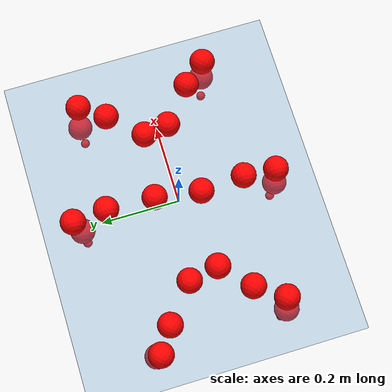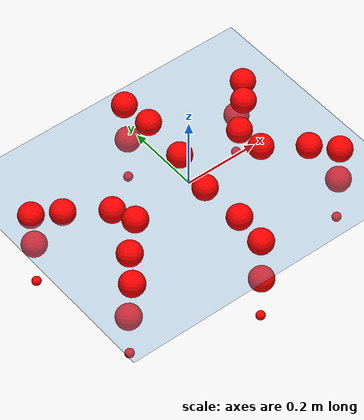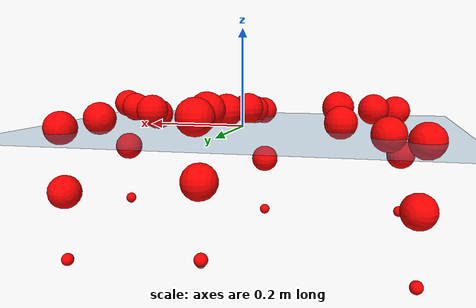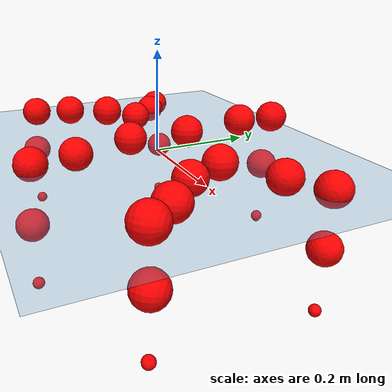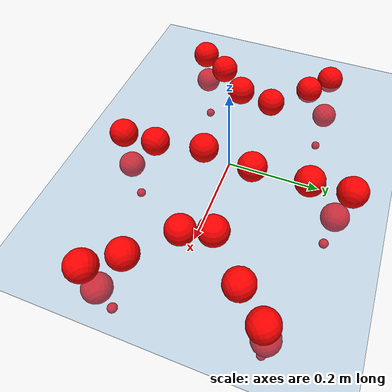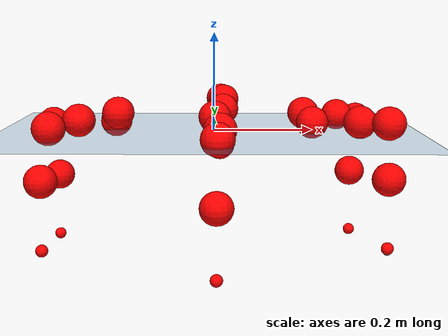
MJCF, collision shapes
<mujoco model="Golem">
  <compiler angle="radian" assetdir="assets" balanceinertia="true" inertiafromgeom="false"/>

  <option timestep="0.005" density="1.2" viscosity="2e-05"/>

  <size nkey="1"/>

  <visual>
    <quality shadowsize="8192"/>
    <map shadowclip="0.5"/>
  </visual>

  <default>
    <default class="/">
      <joint armature="0.01" damping="0.01" frictionloss="0.01"/>
      <geom contype="0" conaffinity="0" group="1" solref="-1000 -80"/>
      <site size="0.01 0.005 0.005" group="5"/>
      <general forcelimited="true" biastype="affine" gainprm="25" biasprm="0 -25 -0.5"/>
      <default class="visual">
        <geom type="mesh" group="2"/>
      </default>
      <default class="collision">
        <geom group="3"/>
      </default>
      <default class="foot">
        <geom size="0.01 0 0" condim="6" group="4" priority="1" solimp="0.015 1 0.01"/>
      </default>
      <default class="reward_collision_sphere">
        <geom group="5" rgba="1 0 0 1"/>
      </default>
    </default>
  </default>

  <asset>
    <texture type="skybox" colorspace="auto" name="//unnamed_texture_0" builtin="gradient" rgb1="0.95 0.95 0.95" rgb2="0.95 0.95 0.95" width="100" height="600"/>
    <texture type="2d" colorspace="auto" name="texplane" builtin="checker" rgb1="0.345 0.575 0.748" rgb2="0.345 0.575 0.748" markrgb="1 1 1" width="512" height="512"/>
    <material name="MatPlane" class="/" texture="texplane" texuniform="true" texrepeat="2 2" specular="0.9"/>
    <mesh name="body" class="/" file="body.stl" scale="0.001 0.001 0.001"/>
    <mesh name="coxa" class="/" file="coxa.stl" scale="0.001 0.001 0.001"/>
    <mesh name="femur" class="/" file="femur.stl" scale="0.001 0.001 0.001"/>
    <mesh name="tibia" class="/" file="tibia.stl" scale="0.001 0.001 0.001"/>
    <mesh name="tarsus" class="/" file="tarsus.stl" scale="0.001 0.001 0.001"/>
  </asset>

  <worldbody>
    <geom name="floor" class="/" size="100 100 0.125" type="plane" group="0" material="MatPlane"/>
    <light name="toplight_shadow" class="/" pos="0 0 5" dir="0.0990148 0.0990148 -0.990148" type="directional" ambient="0.04 0.04 0.04" diffuse="0.55 0.55 0.55" specular="0.12 0.12 0.12"/>
    <light name="toplight_fill" class="/" pos="0 0 5" dir="0.0990148 0.0990148 -0.990148" type="directional" castshadow="false" ambient="0.04 0.04 0.04" diffuse="0.3 0.3 0.3" specular="0.08 0.08 0.08"/>
    <body name="trunk" pos="0.00302026 -0.00334485 0.00448662" quat="0.999997 -0.00186028 -0.000169543 -0.00126378">
      <inertial pos="-0.0110377 -0.00451043 -0.000550668" quat="0.999154 -0.0224151 0.0178853 0.0294627" mass="1.66243" diaginertia="0.0201017 0.00201971 9.62077e-05"/>
      <joint name="//unnamed_joint_0" type="free"/>
      <geom name="//unnamed_geom_1" class="/" pos="0 0 0.0270986" quat="1 0 0 0" type="mesh" rgba="0.9 0.9 0.9 1" mesh="body"/>
      <site name="imu" class="/" pos="0.153974 -0.0143886 0.111165" size="0.00810703"/>
      <camera name="track" class="/" pos="0 -1.52583 0" quat="0.707107 0.707107 0 0" mode="trackcom"/>
      <camera name="ego_camera" class="/" pos="0.161951 0 0.0423416" quat="-0.5 -0.5 0.5 0.5"/>
      <body name="coxa_RR" pos="-0.222012 -0.0645823 0.0346896" quat="0.382688 0.000162342 -0.000380348 -0.923878">
        <inertial pos="-0.00114023 0.00841531 -0.000946012" quat="0.999996 0.00196556 0.000929087 -0.00162406" mass="0.121077" diaginertia="0.0336659 0.003143 0.00013783"/>
        <joint name="coxa_joint_RR" class="/" pos="0 0 0" axis="0.034704 0.0702904 -0.996923" stiffness="0.00338529" range="-2.94654 3.12566" armature="0.00607102" damping="0.0433833" frictionloss="0.0084753"/>
        <geom name="//unnamed_geom_2" class="/" type="mesh" rgba="0.2 0.2 0.2 1" mesh="coxa"/>
        <geom name="//unnamed_geom_3" class="reward_collision_sphere" size="0.0324281" pos="-0.0373733 0 0"/>
        <body name="femur_RR" pos="0.0611145 -0.000722319 -0.00816314" quat="0.497893 -0.503234 0.497849 0.501003">
          <inertial pos="-0.00452001 0.000187898 0.008752" quat="0.999999 -0.000130632 -0.00126818 0.000611978" mass="0.128801" diaginertia="0.0286591 0.00298779 0.000141492"/>
          <joint name="femur_joint_RR" class="/" pos="0 0 0" axis="0.0126276 -0.0635405 -0.997899" stiffness="0.0047939" range="-3.13248 3.0258" armature="0.00824749" damping="0.0138405" frictionloss="0.00521955"/>
          <geom name="//unnamed_geom_4" class="/" type="mesh" rgba="0.9 0.9 0.9 1" mesh="femur"/>
          <geom name="//unnamed_geom_5" class="reward_collision_sphere" size="0.0324281"/>
          <body name="tibia_RR" pos="0.00838944 -0.0841661 0.0155546" quat="0.000212246 1 -2.56014e-05 0.000158777">
            <inertial pos="0.00117194 0.0143823 -0.00135195" quat="0.997368 0.0109408 -0.0258998 0.0668309" mass="0.106343" diaginertia="0.0254989 0.00258383 0.00012982"/>
            <joint name="tibia_joint_RR" class="/" pos="0 0 0" axis="-0.0301858 0.0394784 0.998764" range="-3.33559 3.23033" armature="0.00763811" damping="0" frictionloss="0.0106596"/>
            <geom name="//unnamed_geom_6" class="/" type="mesh" rgba="0.2 0.2 0.2 1" mesh="tibia"/>
            <geom name="//unnamed_geom_7" class="reward_collision_sphere" size="0.0324281"/>
            <body name="tarsus_RR" pos="0.100614 0.0145453 0.00809335" quat="0.999991 0.00295 -0.00189007 -0.00245472">
              <inertial pos="0.075156 0.00012781 0.00996342" quat="0.458116 0.544224 0.479723 0.51363" mass="0.0984559" diaginertia="0.0331446 0.0024763 0.000169814"/>
              <joint name="tarsus_joint_RR" class="/" pos="0 0 0" axis="-1.33921e-05 -2.74503e-05 1" stiffness="0.0227114" range="-2.94418 3.20353" armature="0.0105263" damping="0" frictionloss="0.00350609"/>
              <geom name="//unnamed_geom_8" class="/" type="mesh" rgba="0.9 0.9 0.9 1" mesh="tarsus"/>
              <geom name="foot_1" class="foot" size="0.00566016" pos="0.139527 0 0" quat="0 -0.707107 0 0.707107"/>
              <geom name="//unnamed_geom_10" class="reward_collision_sphere" size="0.0324281"/>
              <geom name="//unnamed_geom_11" class="reward_collision_sphere" size="0.0121605" pos="0.133921 0 0"/>
              <site name="foot_1" class="foot" pos="0.139527 0 0" quat="0 -0.707107 0 0.707107" size="0.00810703"/>
            </body>
          </body>
        </body>
      </body>
      <body name="coxa_RM" pos="-0.00153067 -0.0932038 0.0287741" quat="0.703171 -0.00569535 0.000246456 -0.710998">
        <inertial pos="-0.0102035 2.06888e-05 0.0124167" quat="0.999993 -0.00258711 -0.00275545 0.000209881" mass="0.111594" diaginertia="0.0290478 0.00217393 0.000136438"/>
        <joint name="coxa_joint_RM" class="/" pos="0 0 0" axis="-0.00264922 0.0195244 -0.999806" range="-3.16716 3.12808" armature="0.00324719" damping="0.0359378" frictionloss="0.00561534"/>
        <geom name="//unnamed_geom_12" class="/" type="mesh" rgba="0.2 0.2 0.2 1" mesh="coxa"/>
        <geom name="//unnamed_geom_13" class="reward_collision_sphere" size="0.0324281" pos="-0.0373733 0 0"/>
        <body name="femur_RM" pos="0.0770219 0.0125638 -0.0133877" quat="0.500486 -0.5 0.500344 0.499169">
          <inertial pos="-0.014296 0.00893102 0.000329202" quat="0.999579 -0.0119349 0.0194819 0.0178933" mass="0.123651" diaginertia="0.040779 0.00305525 0.000187135"/>
          <joint name="femur_joint_RM" class="/" pos="0 0 0" axis="0.0484687 0.0209808 -0.998604" range="-3.15846 3.40962" armature="0.00609856" damping="0" frictionloss="0.0114643"/>
          <geom name="//unnamed_geom_14" class="/" type="mesh" rgba="0.9 0.9 0.9 1" mesh="femur"/>
          <geom name="//unnamed_geom_15" class="reward_collision_sphere" size="0.0324281"/>
          <body name="tibia_RM" pos="0.00939798 -0.0846772 -0.00307753" quat="-0.000778322 0.999989 0.00276447 0.00358882">
            <inertial pos="0.00921521 -0.0156143 -0.00150283" quat="0.999002 0.00213521 0.0192222 -0.040272" mass="0.112713" diaginertia="0.032941 0.00288688 0.000152616"/>
            <joint name="tibia_joint_RM" class="/" pos="0 0 0" axis="0.00222631 0.0180395 0.999835" stiffness="0.0297984" range="-3.15312 2.95133" armature="0.0102733" damping="0" frictionloss="0.00854397"/>
            <geom name="//unnamed_geom_16" class="/" type="mesh" rgba="0.2 0.2 0.2 1" mesh="tibia"/>
            <geom name="//unnamed_geom_17" class="reward_collision_sphere" size="0.0324281"/>
            <body name="tarsus_RM" pos="0.125066 0.0072941 0.00159683" quat="1 9.68768e-05 0.000167388 0.00016972">
              <inertial pos="0.0622687 0.00221827 -0.0050804" quat="0.499256 0.497911 0.500613 0.50221" mass="0.0851736" diaginertia="0.0287934 0.0024324 0.000110424"/>
              <joint name="tarsus_joint_RM" class="/" pos="0 0 0" axis="-0.0233914 0.00100683 0.999726" stiffness="0.0139238" range="-2.91802 3.3762" armature="0.00741372" damping="0.00176381" frictionloss="0.0126021"/>
              <geom name="//unnamed_geom_18" class="/" type="mesh" rgba="0.9 0.9 0.9 1" mesh="tarsus"/>
              <geom name="foot_2" class="foot" size="0.0052226" pos="0.139527 0 0" quat="0 -0.707107 0 0.707107"/>
              <geom name="//unnamed_geom_20" class="reward_collision_sphere" size="0.0324281"/>
              <geom name="//unnamed_geom_21" class="reward_collision_sphere" size="0.0121605" pos="0.133921 0 0"/>
              <site name="foot_2" class="foot" pos="0.139527 0 0" quat="0 -0.707107 0 0.707107" size="0.00810703"/>
            </body>
          </body>
        </body>
      </body>
      <body name="coxa_RF" pos="0.222212 -0.0517717 0.0145678" quat="0.92398 -0.00289005 -0.00101022 -0.382428">
        <inertial pos="0.00415271 0.0137727 -0.0109337" quat="0.997722 0.0216681 -0.0459142 -0.0444201" mass="0.137757" diaginertia="0.0365636 0.00289342 0.000152306"/>
        <joint name="coxa_joint_RF" class="/" pos="0 0 0" axis="0.0557827 -0.0230552 -0.998177" stiffness="0.00344128" range="-3.42176 2.97802" armature="0.0128854" damping="0.0453963" frictionloss="0.00821346"/>
        <geom name="//unnamed_geom_22" class="/" type="mesh" rgba="0.2 0.2 0.2 1" mesh="coxa"/>
        <geom name="//unnamed_geom_23" class="reward_collision_sphere" size="0.0324281" pos="-0.0373733 0 0"/>
        <body name="femur_RF" pos="0.077783 0.00764393 0.00807012" quat="0.499837 -0.500018 0.500009 0.500136">
          <inertial pos="0.010613 -0.0136399 -0.000898" quat="0.999677 0.0253018 -0.00159495 -0.00162557" mass="0.101574" diaginertia="0.026788 0.00211847 0.000118665"/>
          <joint name="femur_joint_RF" class="/" pos="0 0 0" axis="-0.00593853 -0.0106498 -0.999926" range="-3.10871 3.29167" armature="0.00819335" damping="0.0179642" frictionloss="0.0112004"/>
          <geom name="//unnamed_geom_24" class="/" type="mesh" rgba="0.9 0.9 0.9 1" mesh="femur"/>
          <geom name="//unnamed_geom_25" class="reward_collision_sphere" size="0.0324281"/>
          <body name="tibia_RF" pos="-0.00328436 -0.0744673 -0.00699965" quat="3.77497e-05 1 3.05582e-05 -7.87359e-06">
            <inertial pos="0.000652557 -0.000103765 0.0150746" quat="0.998045 0.0109648 -0.0486485 0.0376784" mass="0.110994" diaginertia="0.0337645 0.00321134 0.000124288"/>
            <joint name="tibia_joint_RF" class="/" pos="0 0 0" axis="-0.00770407 -0.0315713 0.999472" stiffness="0.0134624" range="-3.13096 2.97271" armature="0.00788063" damping="0" frictionloss="0.00464899"/>
            <geom name="//unnamed_geom_26" class="/" type="mesh" rgba="0.2 0.2 0.2 1" mesh="tibia"/>
            <geom name="//unnamed_geom_27" class="reward_collision_sphere" size="0.0324281"/>
            <body name="tarsus_RF" pos="0.107591 4.87425e-05 -0.00209437" quat="0.999985 -0.0014095 -0.00498414 0.00174027">
              <inertial pos="0.0822082 -0.00373013 -0.00526883" quat="0.500415 0.500678 0.498363 0.500541" mass="0.0937265" diaginertia="0.0283624 0.0026698 0.000143026"/>
              <joint name="tarsus_joint_RF" class="/" pos="0 0 0" axis="0.0110849 -0.0430395 0.999012" stiffness="0.0323751" range="-3.3663 3.15052" armature="0.00722197" damping="0.0405219" frictionloss="0.00672954"/>
              <geom name="//unnamed_geom_28" class="/" type="mesh" rgba="0.9 0.9 0.9 1" mesh="tarsus"/>
              <geom name="foot_3" class="foot" size="0.00779041" pos="0.139527 0 0" quat="0 -0.707107 0 0.707107"/>
              <geom name="//unnamed_geom_30" class="reward_collision_sphere" size="0.0324281"/>
              <geom name="//unnamed_geom_31" class="reward_collision_sphere" size="0.0121605" pos="0.133921 0 0"/>
              <site name="foot_3" class="foot" pos="0.139527 0 0" quat="0 -0.707107 0 0.707107" size="0.00810703"/>
            </body>
          </body>
        </body>
      </body>
      <body name="coxa_LR" pos="-0.233002 0.0632261 0.0111191" quat="0.38441 -0.00134681 0.00110502 0.923161">
        <inertial pos="0.0105507 0.0112705 0.000595487" quat="0.998498 0.00934158 -0.0529129 -0.0107079" mass="0.115804" diaginertia="0.0274131 0.00331185 0.000183431"/>
        <joint name="coxa_joint_LR" class="/" pos="0 0 0" axis="0.00041926 0.000631142 -1" range="-2.96699 2.99298" armature="0.00537781" damping="0.0191105" frictionloss="0.0076682"/>
        <geom name="//unnamed_geom_32" class="/" type="mesh" rgba="0.2 0.2 0.2 1" mesh="coxa"/>
        <geom name="//unnamed_geom_33" class="reward_collision_sphere" size="0.0324281" pos="-0.0373733 0 0"/>
        <body name="femur_LR" pos="0.0792863 0.0100711 -0.010434" quat="0.501691 -0.499914 0.500101 0.498288">
          <inertial pos="-0.00238539 0.0158103 -0.00345114" quat="0.999995 0.00285308 -2.19833e-05 -0.00131133" mass="0.105178" diaginertia="0.03491 0.00222966 0.000159373"/>
          <joint name="femur_joint_LR" class="/" pos="0 0 0" axis="-0.00725326 0.00686509 0.99995" stiffness="0.0193199" range="-3.40027 3.11596" armature="0.00893128" damping="0.0844904" frictionloss="0.00787814"/>
          <geom name="//unnamed_geom_34" class="/" type="mesh" rgba="0.9 0.9 0.9 1" mesh="femur"/>
          <geom name="//unnamed_geom_35" class="reward_collision_sphere" size="0.0324281"/>
          <body name="tibia_LR" pos="0.00414734 -0.0735112 0.0152728" quat="-0.00169427 0.999991 0.00321095 0.00212037">
            <inertial pos="-0.00872168 0.0112073 0.00858223" quat="0.99804 0.02758 -0.0102951 0.0552236" mass="0.0979059" diaginertia="0.032616 0.00272672 0.000129487"/>
            <joint name="tibia_joint_LR" class="/" pos="0 0 0" axis="-0.00576706 0.028277 -0.999583" range="-3.30711 2.87358" armature="0.00592602" damping="0.0493973" frictionloss="0.0083513"/>
            <geom name="//unnamed_geom_36" class="/" type="mesh" rgba="0.2 0.2 0.2 1" mesh="tibia"/>
            <geom name="//unnamed_geom_37" class="reward_collision_sphere" size="0.0324281"/>
            <body name="tarsus_LR" pos="0.119058 0.000912525 0.0152042" quat="0.999986 -0.00131747 0.0016065 0.00484246">
              <inertial pos="0.077873 0.0143512 0.0130477" quat="0.490954 0.477205 0.519804 0.510924" mass="0.106622" diaginertia="0.0276671 0.00286605 0.000159233"/>
              <joint name="tarsus_joint_LR" class="/" pos="0 0 0" axis="-0.0601167 -0.0259869 -0.997853" stiffness="0.0636637" range="-3.00081 3.31755" armature="0.012501" damping="0.0605735" frictionloss="0.0117265"/>
              <geom name="//unnamed_geom_38" class="/" type="mesh" rgba="0.9 0.9 0.9 1" mesh="tarsus"/>
              <geom name="foot_4" class="foot" size="0.00338558" pos="0.139527 0 0" quat="0.707107 0 -0.707107 0"/>
              <geom name="//unnamed_geom_40" class="reward_collision_sphere" size="0.0324281"/>
              <geom name="//unnamed_geom_41" class="reward_collision_sphere" size="0.0121605" pos="0.133921 0 0"/>
              <site name="foot_4" class="foot" pos="0.139527 0 0" quat="0.707107 0 -0.707107 0" size="0.00810703"/>
            </body>
          </body>
        </body>
      </body>
      <body name="coxa_LM" pos="0.0149898 0.0981268 0.0332734" quat="0.70731 0.000287045 -6.69367e-05 0.706903">
        <inertial pos="0.00599674 0.0104505 -0.00615929" quat="0.998006 -0.00909395 0.0620757 0.00692012" mass="0.0993511" diaginertia="0.0227751 0.0020774 0.000112188"/>
        <joint name="coxa_joint_LM" class="/" pos="0 0 0" axis="-0.062003 0.0446342 -0.997077" stiffness="0.0303784" range="-3.14478 3.05416" armature="0.00611621" damping="0" frictionloss="0.00441512"/>
        <geom name="//unnamed_geom_42" class="/" type="mesh" rgba="0.2 0.2 0.2 1" mesh="coxa"/>
        <geom name="//unnamed_geom_43" class="reward_collision_sphere" size="0.0324281" pos="-0.0373733 0 0"/>
        <body name="femur_LM" pos="0.085957 -0.00193128 0.0105756" quat="0.499511 -0.500253 0.49976 0.500475">
          <inertial pos="-0.0103763 0.00285365 0.00462629" quat="0.998508 0.0150219 -0.0523811 -0.00347591" mass="0.0838679" diaginertia="0.0301468 0.00182668 0.000125101"/>
          <joint name="femur_joint_LM" class="/" pos="0 0 0" axis="-5.46211e-05 -0.000297196 1" range="-3.23918 3.10675" armature="0.00869394" damping="0" frictionloss="0.0121941"/>
          <geom name="//unnamed_geom_44" class="/" type="mesh" rgba="0.9 0.9 0.9 1" mesh="femur"/>
          <geom name="//unnamed_geom_45" class="reward_collision_sphere" size="0.0324281"/>
          <body name="tibia_LM" pos="0.00425406 -0.0866297 0.00672589" quat="-0.00324495 0.999982 0.00164978 0.00474883">
            <inertial pos="-0.00934632 -0.000278943 0.0124333" quat="0.997863 -0.0253037 0.0535452 -0.0275882" mass="0.111889" diaginertia="0.0313757 0.00217997 0.000149515"/>
            <joint name="tibia_joint_LM" class="/" pos="0 0 0" axis="0.0384776 0.0165499 -0.999122" stiffness="0.0677443" range="-3.15006 3.12806" armature="0.00776075" damping="0" frictionloss="0.0128061"/>
            <geom name="//unnamed_geom_46" class="/" type="mesh" rgba="0.2 0.2 0.2 1" mesh="tibia"/>
            <geom name="//unnamed_geom_47" class="reward_collision_sphere" size="0.0324281"/>
            <body name="tarsus_LM" pos="0.109269 -0.0122438 -0.000469819" quat="0.99998 0.00246603 0.000977211 0.00570185">
              <inertial pos="0.0739539 9.89655e-05 -0.00825834" quat="0.544319 0.456467 0.513006 0.481849" mass="0.0919262" diaginertia="0.0248391 0.00285901 0.00013994"/>
              <joint name="tarsus_joint_LM" class="/" pos="0 0 0" axis="0.0237911 0.0712464 -0.997175" range="-3.17761 3.17231" armature="0.00889206" damping="0.0175344" frictionloss="0.00283692"/>
              <geom name="//unnamed_geom_48" class="/" type="mesh" rgba="0.9 0.9 0.9 1" mesh="tarsus"/>
              <geom name="foot_5" class="foot" size="0.00871172" pos="0.139527 0 0" quat="0.707107 0 -0.707107 0"/>
              <geom name="//unnamed_geom_50" class="reward_collision_sphere" size="0.0324281"/>
              <geom name="//unnamed_geom_51" class="reward_collision_sphere" size="0.0121605" pos="0.133921 0 0"/>
              <site name="foot_5" class="foot" pos="0.139527 0 0" quat="0.707107 0 -0.707107 0" size="0.00810703"/>
            </body>
          </body>
        </body>
      </body>
      <body name="coxa_LF" pos="0.208416 0.0658558 0.0279648" quat="0.924128 -0.00101491 -0.00153611 0.382078">
        <inertial pos="0.00026622 0.000315459 -0.0124624" quat="0.998549 -0.0423595 -0.0147338 0.0298196" mass="0.120136" diaginertia="0.0352847 0.00217306 0.000154019"/>
        <joint name="coxa_joint_LF" class="/" pos="0 0 0" axis="0.0568626 -0.0138823 -0.998285" range="-3.07794 3.12127" armature="0.0132979" damping="0.021729" frictionloss="0.00176429"/>
        <geom name="//unnamed_geom_52" class="/" type="mesh" rgba="0.2 0.2 0.2 1" mesh="coxa"/>
        <geom name="//unnamed_geom_53" class="reward_collision_sphere" size="0.0324281" pos="-0.0373733 0 0"/>
        <body name="femur_LF" pos="0.0742872 0.00145876 -0.0111285" quat="0.499084 -0.501124 0.50007 0.499719">
          <inertial pos="0.0152935 -0.000883339 -0.0157572" quat="0.999973 -0.005247 -0.00470482 -0.00218706" mass="0.115409" diaginertia="0.0247476 0.00248465 0.00013602"/>
          <joint name="femur_joint_LF" class="/" pos="0 0 0" axis="8.26923e-05 0.0001858 1" range="-3.15325 3.16193" armature="0.00435713" damping="0" frictionloss="0.00634922"/>
          <geom name="//unnamed_geom_54" class="/" type="mesh" rgba="0.9 0.9 0.9 1" mesh="femur"/>
          <geom name="//unnamed_geom_55" class="reward_collision_sphere" size="0.0324281"/>
          <body name="tibia_LF" pos="0.0133832 -0.0789792 0.00908659" quat="0.00364943 0.99999 0.000283118 0.00262824">
            <inertial pos="0.00696275 0.0151394 -0.000324311" quat="0.999995 -0.00285786 0.00111004 0.000925336" mass="0.11743" diaginertia="0.0425616 0.00306206 0.00015155"/>
            <joint name="tibia_joint_LF" class="/" pos="0 0 0" axis="0.000325189 0.00144851 -0.999999" stiffness="0.0265621" range="-3.14131 3.09074" armature="0.0035007" damping="0.0505531" frictionloss="0.00803605"/>
            <geom name="//unnamed_geom_56" class="/" type="mesh" rgba="0.2 0.2 0.2 1" mesh="tibia"/>
            <geom name="//unnamed_geom_57" class="reward_collision_sphere" size="0.0324281"/>
            <body name="tarsus_LF" pos="0.121189 0.000485671 -0.0144179" quat="0.999999 0.000949174 -0.000882396 0.000817519">
              <inertial pos="0.0717892 -0.00851453 0.00295949" quat="0.498315 0.486539 0.474977 0.537921" mass="0.144453" diaginertia="0.0328802 0.0035213 0.000147858"/>
              <joint name="tarsus_joint_LF" class="/" pos="0 0 0" axis="0.0332603 -0.00512487 -0.999434" range="-3.21866 3.11727" armature="0.00295551" damping="0.0636911" frictionloss="0.0141151"/>
              <geom name="//unnamed_geom_58" class="/" type="mesh" rgba="0.9 0.9 0.9 1" mesh="tarsus"/>
              <geom name="foot_6" class="foot" size="0.00623045" pos="0.139527 0 0" quat="0.707107 0 -0.707107 0"/>
              <geom name="//unnamed_geom_60" class="reward_collision_sphere" size="0.0324281"/>
              <geom name="//unnamed_geom_61" class="reward_collision_sphere" size="0.0121605" pos="0.133921 0 0"/>
              <site name="foot_6" class="foot" pos="0.139527 0 0" quat="0.707107 0 -0.707107 0" size="0.00810703"/>
            </body>
          </body>
        </body>
      </body>
    </body>
  </worldbody>

  <contact>
    <pair class="/" geom1="floor" geom2="foot_1" name="//unnamed_contact_0"/>
    <pair class="/" geom1="floor" geom2="foot_2" name="//unnamed_contact_1"/>
    <pair class="/" geom1="floor" geom2="foot_3" name="//unnamed_contact_2"/>
    <pair class="/" geom1="floor" geom2="foot_4" name="//unnamed_contact_3"/>
    <pair class="/" geom1="floor" geom2="foot_5" name="//unnamed_contact_4"/>
    <pair class="/" geom1="floor" geom2="foot_6" name="//unnamed_contact_5"/>
  </contact>

  <actuator>
    <general name="coxa_joint_RR" class="/" joint="coxa_joint_RR" forcerange="-7.24757 7.24757" gainprm="13.9144" biasprm="0 -13.9144 -0.461011"/>
    <general name="femur_joint_RR" class="/" joint="femur_joint_RR" forcerange="-6.32817 6.32817" gainprm="13.9144" biasprm="0 -13.9144 -0.461011"/>
    <general name="tibia_joint_RR" class="/" joint="tibia_joint_RR" forcerange="-7.04476 7.04476" gainprm="13.9144" biasprm="0 -13.9144 -0.461011"/>
    <general name="tarsus_joint_RR" class="/" joint="tarsus_joint_RR" forcerange="-3.09815 3.09815" gainprm="13.9144" biasprm="0 -13.9144 -0.461011"/>
    <general name="coxa_joint_RM" class="/" joint="coxa_joint_RM" forcerange="-5.47749 5.47749" gainprm="13.9144" biasprm="0 -13.9144 -0.461011"/>
    <general name="femur_joint_RM" class="/" joint="femur_joint_RM" forcerange="-5.88111 5.88111" gainprm="13.9144" biasprm="0 -13.9144 -0.461011"/>
    <general name="tibia_joint_RM" class="/" joint="tibia_joint_RM" forcerange="-6.06776 6.06776" gainprm="13.9144" biasprm="0 -13.9144 -0.461011"/>
    <general name="tarsus_joint_RM" class="/" joint="tarsus_joint_RM" forcerange="-2.7241 2.7241" gainprm="13.9144" biasprm="0 -13.9144 -0.461011"/>
    <general name="coxa_joint_RF" class="/" joint="coxa_joint_RF" forcerange="-4.08315 4.08315" gainprm="13.9144" biasprm="0 -13.9144 -0.461011"/>
    <general name="femur_joint_RF" class="/" joint="femur_joint_RF" forcerange="-8.9849 8.9849" gainprm="13.9144" biasprm="0 -13.9144 -0.461011"/>
    <general name="tibia_joint_RF" class="/" joint="tibia_joint_RF" forcerange="-3.80478 3.80478" gainprm="13.9144" biasprm="0 -13.9144 -0.461011"/>
    <general name="tarsus_joint_RF" class="/" joint="tarsus_joint_RF" forcerange="-8.16106 8.16106" gainprm="13.9144" biasprm="0 -13.9144 -0.461011"/>
    <general name="coxa_joint_LR" class="/" joint="coxa_joint_LR" forcerange="-7.89615 7.89615" gainprm="13.9144" biasprm="0 -13.9144 -0.461011"/>
    <general name="femur_joint_LR" class="/" joint="femur_joint_LR" forcerange="-5.80326 5.80326" gainprm="13.9144" biasprm="0 -13.9144 -0.461011"/>
    <general name="tibia_joint_LR" class="/" joint="tibia_joint_LR" forcerange="-6.10801 6.10801" gainprm="13.9144" biasprm="0 -13.9144 -0.461011"/>
    <general name="tarsus_joint_LR" class="/" joint="tarsus_joint_LR" forcerange="-7.91259 7.91259" gainprm="13.9144" biasprm="0 -13.9144 -0.461011"/>
    <general name="coxa_joint_LM" class="/" joint="coxa_joint_LM" forcerange="-6.64925 6.64925" gainprm="13.9144" biasprm="0 -13.9144 -0.461011"/>
    <general name="femur_joint_LM" class="/" joint="femur_joint_LM" forcerange="-8.02719 8.02719" gainprm="13.9144" biasprm="0 -13.9144 -0.461011"/>
    <general name="tibia_joint_LM" class="/" joint="tibia_joint_LM" forcerange="-7.32555 7.32555" gainprm="13.9144" biasprm="0 -13.9144 -0.461011"/>
    <general name="tarsus_joint_LM" class="/" joint="tarsus_joint_LM" forcerange="-6.74173 6.74173" gainprm="13.9144" biasprm="0 -13.9144 -0.461011"/>
    <general name="coxa_joint_LF" class="/" joint="coxa_joint_LF" forcerange="-8.70076 8.70076" gainprm="13.9144" biasprm="0 -13.9144 -0.461011"/>
    <general name="femur_joint_LF" class="/" joint="femur_joint_LF" forcerange="-7.90204 7.90204" gainprm="13.9144" biasprm="0 -13.9144 -0.461011"/>
    <general name="tibia_joint_LF" class="/" joint="tibia_joint_LF" forcerange="-3.95076 3.95076" gainprm="13.9144" biasprm="0 -13.9144 -0.461011"/>
    <general name="tarsus_joint_LF" class="/" joint="tarsus_joint_LF" forcerange="-7.24273 7.24273" gainprm="13.9144" biasprm="0 -13.9144 -0.461011"/>
  </actuator>

  <sensor>
    <gyro site="imu" name="imu_angular_velocity"/>
    <velocimeter site="imu" name="imu_linear_velocity"/>
    <framelinvel objtype="site" objname="foot_1" name="foot_1_global_linear_velocity"/>
    <framelinvel objtype="site" objname="foot_2" name="foot_2_global_linear_velocity"/>
    <framelinvel objtype="site" objname="foot_3" name="foot_3_global_linear_velocity"/>
    <framelinvel objtype="site" objname="foot_4" name="foot_4_global_linear_velocity"/>
    <framelinvel objtype="site" objname="foot_5" name="foot_5_global_linear_velocity"/>
    <framelinvel objtype="site" objname="foot_6" name="foot_6_global_linear_velocity"/>
  </sensor>

  <keyframe>
    <key name="home" qpos="0 0 0.1457 1 0 0 0 0 0 0 0 0 0 0 0 0 0 0 0 0 0 0 0 0 0 0 0 0 0 0 0"/>
  </keyframe>
</mujoco>
